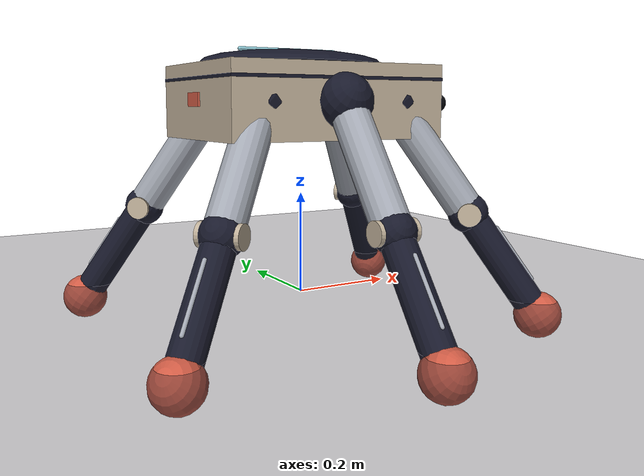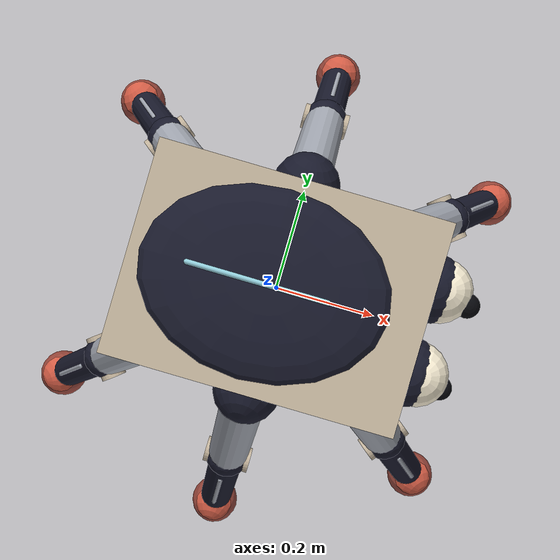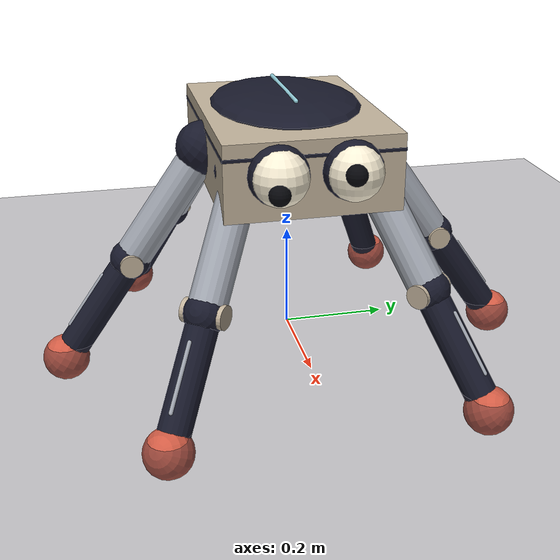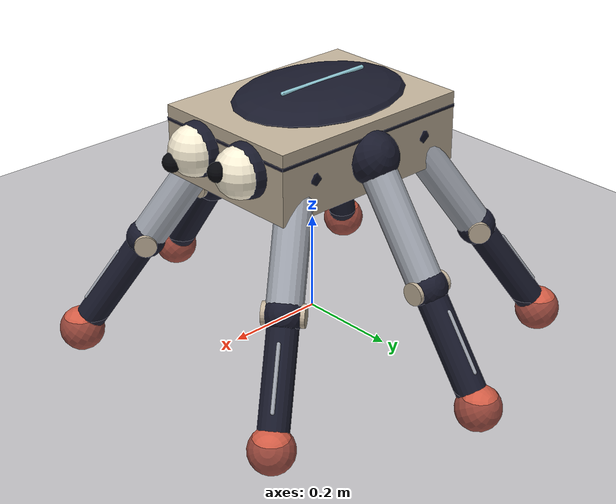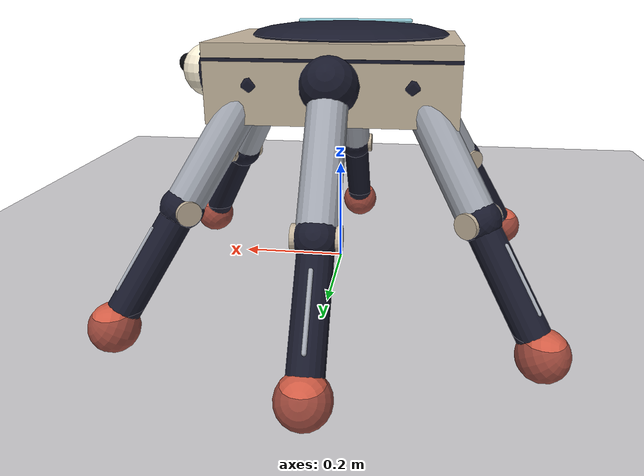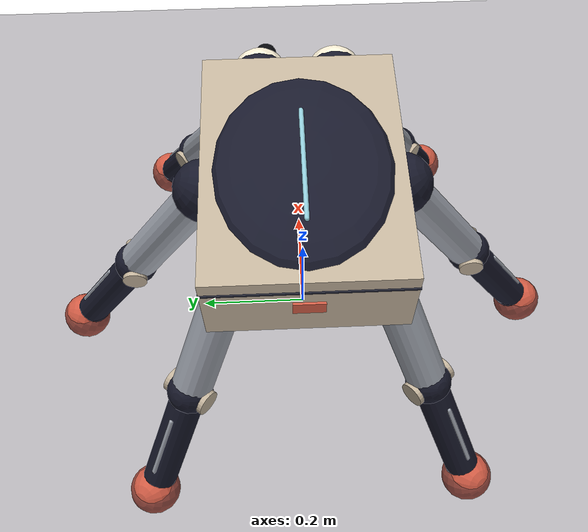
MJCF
<mujoco model="spider">
  <compiler angle="degree" autolimits="true" eulerseq="zyx"/>
  <option timestep="0.002" gravity="0 0 -9.81" integrator="implicitfast"/>

  <!-- C-1N's identity layer. Sites are render-only: they have no mass or contact. -->
  <asset>
    <texture name="twilight" type="skybox" builtin="gradient" rgb1="0.055 0.05 0.08" rgb2="0.16 0.145 0.19" width="512" height="3072"/>
    <material name="ceramic" rgba="0.76 0.70 0.61 1" specular="0.12" shininess="0.25"/>
    <material name="upper_link" rgba="0.64 0.66 0.70 1"/>
    <material name="graphite" rgba="0.095 0.10 0.17 1" specular="0.36" shininess="0.45"/>
    <material name="vermilion" rgba="0.82 0.36 0.27 1"/>
    <material name="eye_white" rgba="0.98 0.94 0.84 1"/>
    <material name="marking" rgba="0.58 0.81 0.86 1" emission="0.35"/>
  </asset>

  <visual>
    <headlight ambient="0.20 0.20 0.25" diffuse="0.28 0.28 0.32" specular="0.15 0.15 0.15"/>
    <rgba haze="0.09 0.10 0.15 1"/>
    <quality shadowsize="4096"/>
  </visual>

  <default>
    <joint damping="0.5" armature="0.01"/>
    <geom contype="1" conaffinity="1" friction="1 0.5 0.5" density="500" rgba="0.01 0.01 0.015 1"/>
  </default>

  <worldbody>
    <light name="main" pos="1 -1 2.5" dir="-0.4 0.4 -1" directional="false" diffuse="0.60 0.55 0.49" specular="0.35 0.30 0.25"/>
    <light name="rim" pos="-1 1 1.5" dir="0.5 -0.5 -1" directional="true" diffuse="0.30 0.37 0.55" specular="0.18 0.22 0.32" castshadow="false"/>
    <geom name="ground" type="plane" size="12 12 0.1" rgba="0.16 0.145 0.19 1"/>

    <body name="torso" pos="0 0 0.38">
      <freejoint name="root"/>
      <geom name="torso_geom" type="box" size="0.22 0.16 0.07" material="ceramic" rgba="0.76 0.70 0.61 1"/>
      <site name="torso_center" pos="0 0 0" size="0.02" rgba="1 0 0 1"/>

      <!-- Porcelain Surveyor. Group 2 is the viewer-visible visual layer. -->
      <site name="cowl_visual" type="ellipsoid" pos="-0.018 0 0.074" size="0.185 0.14 0.025" material="graphite" rgba="0.095 0.10 0.17 1" group="2"/>
      <!-- Narrow shell seam and face sockets clarify the ceramic / mechanism boundary. -->
      <site name="shell_seam_visual" type="box" pos="0 0 0.042" size="0.221 0.161 0.003" material="graphite" group="2"/>
      <site name="left_socket_visual" type="sphere" pos="0.220 0.065 0.012" size="0.054" material="graphite" group="2"/>
      <site name="right_socket_visual" type="sphere" pos="0.220 -0.065 0.012" size="0.054" material="graphite" group="2"/>
      <site name="rear_badge_visual" type="box" pos="-0.223 0 0.003" size="0.002 0.025 0.013" material="vermilion" group="2"/>
      <site name="left_eye_visual" type="sphere" pos="0.235 0.065 0.012" size="0.050" material="eye_white" rgba="0.98 0.94 0.84 1" group="2"/>
      <site name="right_eye_visual" type="sphere" pos="0.235 -0.065 0.012" size="0.050" material="eye_white" rgba="0.98 0.94 0.84 1" group="2"/>
      <site name="left_pupil_visual" type="sphere" pos="0.279 0.054 0.022" size="0.019" material="graphite" rgba="0.025 0.027 0.045 1" group="2"/>
      <site name="right_pupil_visual" type="sphere" pos="0.279 -0.076 -0.002" size="0.019" material="graphite" rgba="0.025 0.027 0.045 1" group="2"/>
      <site name="spine_visual" type="capsule" fromto="-0.13 0 0.098 0.075 0 0.098" size="0.004" material="marking" rgba="0.58 0.81 0.86 1" group="2"/>

      <body name="front_left" pos="0.14 0.11 0" euler="38 55 0">
        <joint name="front_left_coxa" type="hinge" axis="0 0 1" range="-45 45"/>
        <joint name="front_left_hip" type="hinge" axis="0 1 0" range="-45 45"/>
        <geom name="front_left_thigh" type="capsule" fromto="0 0 0 0.26 0 0" size="0.035" material="upper_link" rgba="0.64 0.66 0.70 1"/>
        <site name="front_left_joint_visual" type="sphere" size="0.052" material="graphite" rgba="0.095 0.10 0.17 1" group="2"/>
        <body name="front_left_shin" pos="0.26 0 0">
          <joint name="front_left_knee" type="hinge" axis="0 1 0" range="-80 80"/>
          <!-- Render-only knee bearing and shin inlay. -->
          <site name="front_left_knee_visual" type="sphere" size="0.039" material="graphite" group="2"/>
          <site name="front_left_outer_hub_visual" type="cylinder" pos="0 0.034 0" euler="0 0 90" size="0.022 0.006" material="ceramic" group="2"/>
          <site name="front_left_inner_hub_visual" type="cylinder" pos="0 -0.034 0" euler="0 0 90" size="0.022 0.006" material="ceramic" group="2"/>
          <site name="front_left_shin_inlay_visual" type="capsule" fromto="0.055 0 0.029 0.175 0 0.029" size="0.004" material="upper_link" group="2"/>
          <geom name="front_left_shin_geom" type="capsule" fromto="0 0 0 0.24 0 0" size="0.03" material="graphite" rgba="0.095 0.10 0.17 1"/>
          <geom name="front_left_foot" type="sphere" pos="0.24 0 0" size="0.045" material="vermilion" rgba="0.82 0.36 0.27 1"/>
          <site name="front_left_contact_site" pos="0.24 0 0" size="0.02"/>
        </body>
      </body>

      <body name="front_right" pos="0.14 -0.11 0" euler="-38 55 0">
        <joint name="front_right_coxa" type="hinge" axis="0 0 1" range="-45 45"/>
        <joint name="front_right_hip" type="hinge" axis="0 1 0" range="-45 45"/>
        <geom name="front_right_thigh" type="capsule" fromto="0 0 0 0.26 0 0" size="0.035" material="upper_link" rgba="0.64 0.66 0.70 1"/>
        <site name="front_right_joint_visual" type="sphere" size="0.052" material="graphite" rgba="0.095 0.10 0.17 1" group="2"/>
        <body name="front_right_shin" pos="0.26 0 0">
          <joint name="front_right_knee" type="hinge" axis="0 1 0" range="-80 80"/>
          <!-- Render-only knee bearing and shin inlay. -->
          <site name="front_right_knee_visual" type="sphere" size="0.039" material="graphite" group="2"/>
          <site name="front_right_outer_hub_visual" type="cylinder" pos="0 0.034 0" euler="0 0 90" size="0.022 0.006" material="ceramic" group="2"/>
          <site name="front_right_inner_hub_visual" type="cylinder" pos="0 -0.034 0" euler="0 0 90" size="0.022 0.006" material="ceramic" group="2"/>
          <site name="front_right_shin_inlay_visual" type="capsule" fromto="0.055 0 0.029 0.175 0 0.029" size="0.004" material="upper_link" group="2"/>
          <geom name="front_right_shin_geom" type="capsule" fromto="0 0 0 0.24 0 0" size="0.03" material="graphite" rgba="0.095 0.10 0.17 1"/>
          <geom name="front_right_foot" type="sphere" pos="0.24 0 0" size="0.045" material="vermilion" rgba="0.82 0.36 0.27 1"/>
          <site name="front_right_contact_site" pos="0.24 0 0" size="0.02"/>
        </body>
      </body>

      <body name="middle_left" pos="0 0.16 0" euler="90 55 0">
        <joint name="middle_left_coxa" type="hinge" axis="0 0 1" range="-45 45"/>
        <joint name="middle_left_hip" type="hinge" axis="0 1 0" range="-45 45"/>
        <geom name="middle_left_thigh" type="capsule" fromto="0 0 0 0.26 0 0" size="0.035" material="upper_link" rgba="0.64 0.66 0.70 1"/>
        <site name="middle_left_joint_visual" type="sphere" size="0.052" material="graphite" rgba="0.095 0.10 0.17 1" group="2"/>
        <body name="middle_left_shin" pos="0.26 0 0">
          <joint name="middle_left_knee" type="hinge" axis="0 1 0" range="-80 80"/>
          <!-- Render-only knee bearing and shin inlay. -->
          <site name="middle_left_knee_visual" type="sphere" size="0.039" material="graphite" group="2"/>
          <site name="middle_left_outer_hub_visual" type="cylinder" pos="0 0.034 0" euler="0 0 90" size="0.022 0.006" material="ceramic" group="2"/>
          <site name="middle_left_inner_hub_visual" type="cylinder" pos="0 -0.034 0" euler="0 0 90" size="0.022 0.006" material="ceramic" group="2"/>
          <site name="middle_left_shin_inlay_visual" type="capsule" fromto="0.055 0 0.029 0.175 0 0.029" size="0.004" material="upper_link" group="2"/>
          <geom name="middle_left_shin_geom" type="capsule" fromto="0 0 0 0.24 0 0" size="0.03" material="graphite" rgba="0.095 0.10 0.17 1"/>
          <geom name="middle_left_foot" type="sphere" pos="0.24 0 0" size="0.045" material="vermilion" rgba="0.82 0.36 0.27 1"/>
          <site name="middle_left_contact_site" pos="0.24 0 0" size="0.02"/>
        </body>
      </body>

      <body name="middle_right" pos="0 -0.16 0" euler="-90 55 0">
        <joint name="middle_right_coxa" type="hinge" axis="0 0 1" range="-45 45"/>
        <joint name="middle_right_hip" type="hinge" axis="0 1 0" range="-45 45"/>
        <geom name="middle_right_thigh" type="capsule" fromto="0 0 0 0.26 0 0" size="0.035" material="upper_link" rgba="0.64 0.66 0.70 1"/>
        <site name="middle_right_joint_visual" type="sphere" size="0.052" material="graphite" rgba="0.095 0.10 0.17 1" group="2"/>
        <body name="middle_right_shin" pos="0.26 0 0">
          <joint name="middle_right_knee" type="hinge" axis="0 1 0" range="-80 80"/>
          <!-- Render-only knee bearing and shin inlay. -->
          <site name="middle_right_knee_visual" type="sphere" size="0.039" material="graphite" group="2"/>
          <site name="middle_right_outer_hub_visual" type="cylinder" pos="0 0.034 0" euler="0 0 90" size="0.022 0.006" material="ceramic" group="2"/>
          <site name="middle_right_inner_hub_visual" type="cylinder" pos="0 -0.034 0" euler="0 0 90" size="0.022 0.006" material="ceramic" group="2"/>
          <site name="middle_right_shin_inlay_visual" type="capsule" fromto="0.055 0 0.029 0.175 0 0.029" size="0.004" material="upper_link" group="2"/>
          <geom name="middle_right_shin_geom" type="capsule" fromto="0 0 0 0.24 0 0" size="0.03" material="graphite" rgba="0.095 0.10 0.17 1"/>
          <geom name="middle_right_foot" type="sphere" pos="0.24 0 0" size="0.045" material="vermilion" rgba="0.82 0.36 0.27 1"/>
          <site name="middle_right_contact_site" pos="0.24 0 0" size="0.02"/>
        </body>
      </body>

      <body name="rear_left" pos="-0.14 0.11 0" euler="142 55 0">
        <joint name="rear_left_coxa" type="hinge" axis="0 0 1" range="-45 45"/>
        <joint name="rear_left_hip" type="hinge" axis="0 1 0" range="-45 45"/>
        <geom name="rear_left_thigh" type="capsule" fromto="0 0 0 0.26 0 0" size="0.035" material="upper_link" rgba="0.64 0.66 0.70 1"/>
        <site name="rear_left_joint_visual" type="sphere" size="0.052" material="graphite" rgba="0.095 0.10 0.17 1" group="2"/>
        <body name="rear_left_shin" pos="0.26 0 0">
          <joint name="rear_left_knee" type="hinge" axis="0 1 0" range="-80 80"/>
          <!-- Render-only knee bearing and shin inlay. -->
          <site name="rear_left_knee_visual" type="sphere" size="0.039" material="graphite" group="2"/>
          <site name="rear_left_outer_hub_visual" type="cylinder" pos="0 0.034 0" euler="0 0 90" size="0.022 0.006" material="ceramic" group="2"/>
          <site name="rear_left_inner_hub_visual" type="cylinder" pos="0 -0.034 0" euler="0 0 90" size="0.022 0.006" material="ceramic" group="2"/>
          <site name="rear_left_shin_inlay_visual" type="capsule" fromto="0.055 0 0.029 0.175 0 0.029" size="0.004" material="upper_link" group="2"/>
          <geom name="rear_left_shin_geom" type="capsule" fromto="0 0 0 0.24 0 0" size="0.03" material="graphite" rgba="0.095 0.10 0.17 1"/>
          <geom name="rear_left_foot" type="sphere" pos="0.24 0 0" size="0.045" material="vermilion" rgba="0.82 0.36 0.27 1"/>
          <site name="rear_left_contact_site" pos="0.24 0 0" size="0.02"/>
        </body>
      </body>

      <body name="rear_right" pos="-0.14 -0.11 0" euler="-142 55 0">
        <joint name="rear_right_coxa" type="hinge" axis="0 0 1" range="-45 45"/>
        <joint name="rear_right_hip" type="hinge" axis="0 1 0" range="-45 45"/>
        <geom name="rear_right_thigh" type="capsule" fromto="0 0 0 0.26 0 0" size="0.035" material="upper_link" rgba="0.64 0.66 0.70 1"/>
        <site name="rear_right_joint_visual" type="sphere" size="0.052" material="graphite" rgba="0.095 0.10 0.17 1" group="2"/>
        <body name="rear_right_shin" pos="0.26 0 0">
          <joint name="rear_right_knee" type="hinge" axis="0 1 0" range="-80 80"/>
          <!-- Render-only knee bearing and shin inlay. -->
          <site name="rear_right_knee_visual" type="sphere" size="0.039" material="graphite" group="2"/>
          <site name="rear_right_outer_hub_visual" type="cylinder" pos="0 0.034 0" euler="0 0 90" size="0.022 0.006" material="ceramic" group="2"/>
          <site name="rear_right_inner_hub_visual" type="cylinder" pos="0 -0.034 0" euler="0 0 90" size="0.022 0.006" material="ceramic" group="2"/>
          <site name="rear_right_shin_inlay_visual" type="capsule" fromto="0.055 0 0.029 0.175 0 0.029" size="0.004" material="upper_link" group="2"/>
          <geom name="rear_right_shin_geom" type="capsule" fromto="0 0 0 0.24 0 0" size="0.03" material="graphite" rgba="0.095 0.10 0.17 1"/>
          <geom name="rear_right_foot" type="sphere" pos="0.24 0 0" size="0.045" material="vermilion" rgba="0.82 0.36 0.27 1"/>
          <site name="rear_right_contact_site" pos="0.24 0 0" size="0.02"/>
        </body>
      </body>
    </body>
  </worldbody>

  <actuator>
    <position name="front_left_coxa_motor" joint="front_left_coxa" kp="300" ctrlrange="-0.8 0.8"/>
    <position name="front_left_hip_motor" joint="front_left_hip" kp="300" ctrlrange="-0.8 0.8"/>
    <position name="front_left_knee_motor" joint="front_left_knee" kp="300" ctrlrange="-1.4 1.4"/>
    <position name="front_right_coxa_motor" joint="front_right_coxa" kp="300" ctrlrange="-0.8 0.8"/>
    <position name="front_right_hip_motor" joint="front_right_hip" kp="300" ctrlrange="-0.8 0.8"/>
    <position name="front_right_knee_motor" joint="front_right_knee" kp="300" ctrlrange="-1.4 1.4"/>
    <position name="middle_left_coxa_motor" joint="middle_left_coxa" kp="300" ctrlrange="-0.8 0.8"/>
    <position name="middle_left_hip_motor" joint="middle_left_hip" kp="300" ctrlrange="-0.8 0.8"/>
    <position name="middle_left_knee_motor" joint="middle_left_knee" kp="300" ctrlrange="-1.4 1.4"/>
    <position name="middle_right_coxa_motor" joint="middle_right_coxa" kp="300" ctrlrange="-0.8 0.8"/>
    <position name="middle_right_hip_motor" joint="middle_right_hip" kp="300" ctrlrange="-0.8 0.8"/>
    <position name="middle_right_knee_motor" joint="middle_right_knee" kp="300" ctrlrange="-1.4 1.4"/>
    <position name="rear_left_coxa_motor" joint="rear_left_coxa" kp="300" ctrlrange="-0.8 0.8"/>
    <position name="rear_left_hip_motor" joint="rear_left_hip" kp="300" ctrlrange="-0.8 0.8"/>
    <position name="rear_left_knee_motor" joint="rear_left_knee" kp="300" ctrlrange="-1.4 1.4"/>
    <position name="rear_right_coxa_motor" joint="rear_right_coxa" kp="300" ctrlrange="-0.8 0.8"/>
    <position name="rear_right_hip_motor" joint="rear_right_hip" kp="300" ctrlrange="-0.8 0.8"/>
    <position name="rear_right_knee_motor" joint="rear_right_knee" kp="300" ctrlrange="-1.4 1.4"/>
  </actuator>

  <sensor>
    <framequat name="torso_orientation" objtype="body" objname="torso"/>
    <framelinvel name="torso_velocity" objtype="body" objname="torso"/>
    <touch name="front_left_contact" site="front_left_contact_site"/>
    <touch name="front_right_contact" site="front_right_contact_site"/>
    <touch name="middle_left_contact" site="middle_left_contact_site"/>
    <touch name="middle_right_contact" site="middle_right_contact_site"/>
    <touch name="rear_left_contact" site="rear_left_contact_site"/>
    <touch name="rear_right_contact" site="rear_right_contact_site"/>
  </sensor>
</mujoco>
